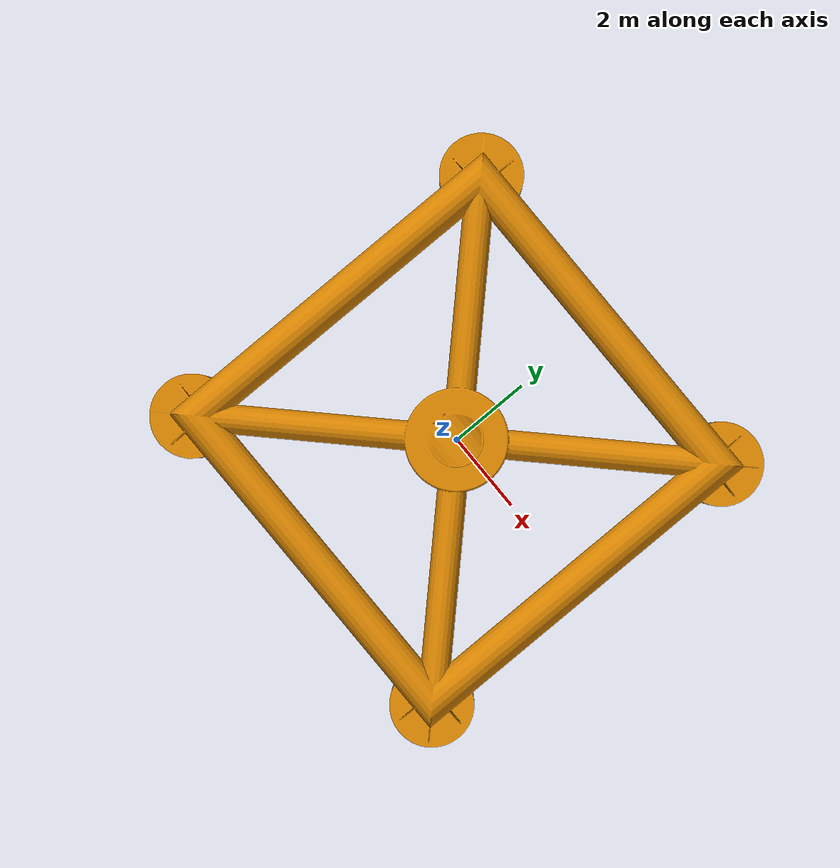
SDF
<?xml version="1.0" ?>
<sdf version="1.8">
  <model name="base">
    <static>true</static>
    <pose>0 0 1 1.5708 0 0</pose>
    <link name="link">
      <visual name="visual">
        <geometry>
          <mesh>
            <uri>model://Base/meshes/TidalTurbine_Base.dae</uri>
          </mesh>
        </geometry>
      </visual>
      <collision name="collision">
        <geometry>
          <mesh>
            <uri>model://Base/meshes/TidalTurbine_Base.dae</uri>
          </mesh>
        </geometry>
      </collision>
    </link>
  </model>
</sdf>
